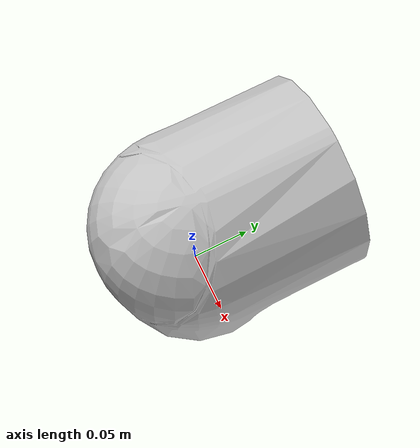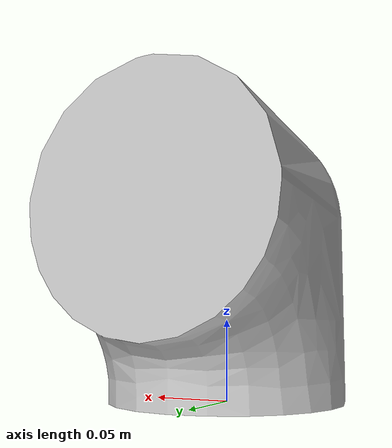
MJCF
<mujoco model="J1">
  <default>
    <default class="visual">
      <geom group="2" type="mesh" contype="0" conaffinity="0"/>
    </default>
    <default class="collision">
      <geom group="3" type="mesh"/>
    </default>
  </default>
  <asset>
    <material name="material_m1_0" specular="0.20000000000000004" shininess="1.0" rgba="0.75294118 0.75294118 0.75294118 1.0"/>
    <mesh file="J1.obj"/>
  </asset>
  <worldbody>
    <body name="J1">
      <geom material="material_m1_0" mesh="J1" class="visual"/>
      <geom mesh="J1" class="collision"/>
    </body>
  </worldbody>
</mujoco>
